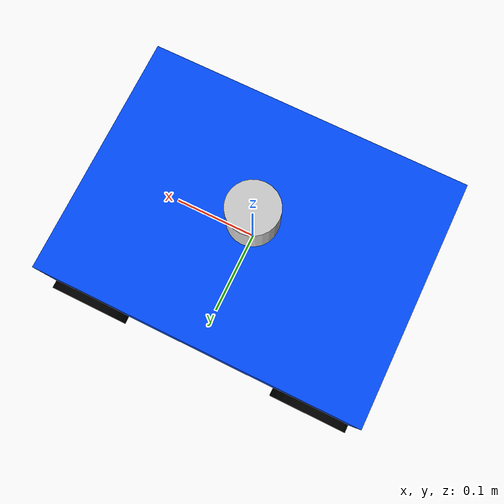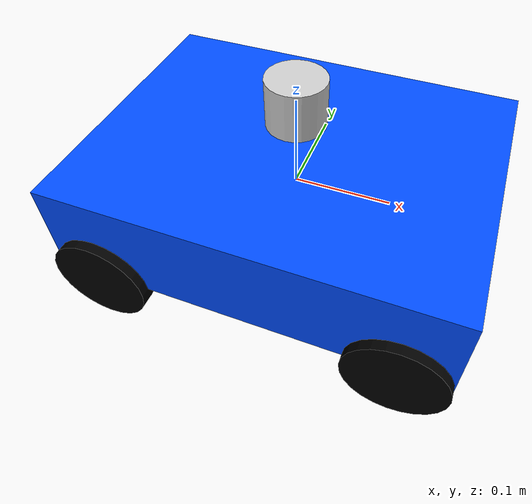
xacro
<?xml version="1.0"?>
<robot name="eclipse_bot" xmlns:xacro="http://www.ros.org/wiki/xacro">

  <!-- ===== BASE ===== -->
  <link name="base_link">
    <visual>
      <geometry><box size="0.4 0.3 0.1"/></geometry>
      <material name="blue"><color rgba="0.0 0.3 1.0 1.0"/></material>
    </visual>
    <collision>
      <geometry><box size="0.4 0.3 0.1"/></geometry>
    </collision>
    <inertial>
      <mass value="2.0"/>
      <inertia ixx="0.02" iyy="0.02" izz="0.02" ixy="0" ixz="0" iyz="0"/>
    </inertial>
  </link>

  <!-- ===== WHEELS ===== -->
  <xacro:macro name="wheel" params="name x y">
    <link name="${name}">
      <visual>
        <geometry><cylinder length="0.02" radius="0.05"/></geometry>
        <material name="black"><color rgba="0 0 0 1"/></material>
        <origin rpy="1.5708 0 0" xyz="0 0 0"/>
      </visual>
      <collision>
        <geometry><cylinder length="0.02" radius="0.05"/></geometry>
        <origin rpy="1.5708 0 0" xyz="0 0 0"/>
      </collision>
      <inertial>
        <mass value="0.2"/>
        <!-- Correct, nonzero inertia for a cylinder about its axis -->
        <inertia ixx="0.00025" iyy="0.00025" izz="0.0001" ixy="0" ixz="0" iyz="0"/>
      </inertial>
    </link>

    <joint name="${name}_joint" type="continuous">
      <parent link="base_link"/>
      <child link="${name}"/>
      <origin xyz="${x} ${y} -0.05" rpy="0 0 0"/>
      <axis xyz="0 1 0"/>
    </joint>

    <!-- Gazebo friction for wheel -->
    <gazebo reference="${name}">
      <mu1>1.0</mu1>
      <mu2>1.0</mu2>
      <kp>1000000.0</kp>
      <kd>100.0</kd>
      <minDepth>0.001</minDepth>
      <maxVel>1.0</maxVel>
    </gazebo>
  </xacro:macro>

  <xacro:wheel name="front_left_wheel"  x="0.15"  y="0.15"/>
  <xacro:wheel name="front_right_wheel" x="0.15"  y="-0.15"/>
  <xacro:wheel name="rear_left_wheel"   x="-0.15" y="0.15"/>
  <xacro:wheel name="rear_right_wheel"  x="-0.15" y="-0.15"/>

  <!-- Reduce friction on rear wheels so they spin freely -->
  <gazebo reference="rear_left_wheel">
    <mu1>0.1</mu1>
    <mu2>0.1</mu2>
  </gazebo>
  <gazebo reference="rear_right_wheel">
    <mu1>0.1</mu1>
    <mu2>0.1</mu2>
  </gazebo>

  <!-- ===== LIDAR LINK ===== -->
  <link name="lidar_link">
    <visual>
      <geometry><cylinder length="0.05" radius="0.03"/></geometry>
      <material name="gray"><color rgba="0.8 0.8 0.8 1.0"/></material>
    </visual>
    <collision>
      <geometry><cylinder length="0.05" radius="0.03"/></geometry>
    </collision>
    <inertial>
      <mass value="0.05"/>
      <inertia ixx="0.0001" iyy="0.0001" izz="0.0001" ixy="0" ixz="0" iyz="0"/>
    </inertial>
  </link>

  <joint name="lidar_joint" type="fixed">
    <parent link="base_link"/>
    <child link="lidar_link"/>
    <origin xyz="0 0 0.1" rpy="0 0 0"/>
  </joint>

  <!-- ===== IMU LINK ===== -->
  <link name="imu_link">
    <inertial>
      <mass value="0.01"/>
      <inertia ixx="0.00001" iyy="0.00001" izz="0.00001" ixy="0" ixz="0" iyz="0"/>
    </inertial>
  </link>

  <joint name="imu_joint" type="fixed">
    <parent link="base_link"/>
    <child link="imu_link"/>
    <origin xyz="0 0 0.05" rpy="0 0 0"/>
  </joint>

  <!-- ===== DIFF DRIVE PLUGIN (using front wheels only, rear are passive) ===== -->
  <gazebo>
    <plugin name="gz::sim::systems::DiffDrive" filename="gz-sim-diff-drive-system">
      <left_joint>front_left_wheel_joint</left_joint>
      <right_joint>front_right_wheel_joint</right_joint>
      <wheel_separation>0.3</wheel_separation>
      <wheel_radius>0.05</wheel_radius>
      <odom_publish_frequency>50</odom_publish_frequency>
      <max_linear_acceleration>1</max_linear_acceleration>
      <min_linear_acceleration>-1</min_linear_acceleration>
      <max_angular_acceleration>2</max_angular_acceleration>
      <min_angular_acceleration>-2</min_angular_acceleration>
      <topic>cmd_vel</topic>
      <odom_topic>odom</odom_topic>
      <odom_frame>odom</odom_frame>
      <robot_base_frame>base_link</robot_base_frame>
      <publish_odom>true</publish_odom>
      <publish_tf>true</publish_tf>
    </plugin>
  </gazebo>

  <!-- ===== LIDAR SENSOR ===== -->
  <gazebo reference="lidar_link">
    <sensor name="lidar_sensor" type="gpu_lidar">
      <always_on>true</always_on>
      <update_rate>10</update_rate>
      <visualize>true</visualize>
      <pose>0 0 0 0 0 0</pose>
      <topic>scan</topic>
      <ray>
        <scan>
          <horizontal>
            <samples>720</samples>
            <resolution>1</resolution>
            <min_angle>-1.5708</min_angle>
            <max_angle>1.5708</max_angle>
          </horizontal>
        </scan>
        <range>
          <min>0.12</min>
          <max>5.0</max>
          <resolution>0.01</resolution>
        </range>
        <noise>
          <type>gaussian</type>
          <stddev>0.01</stddev>
        </noise>
      </ray>
      <plugin name="gz::sim::systems::Sensors" filename="gz-sim-sensors-system"/>
    </sensor>
  </gazebo>

  <!-- ===== IMU SENSOR ===== -->
  <gazebo reference="imu_link">
    <sensor name="imu_sensor" type="imu">
      <always_on>true</always_on>
      <update_rate>100</update_rate>
      <topic>imu</topic>
      <imu>
        <angular_velocity>
          <x>
            <noise type="gaussian">
              <mean>0.0</mean>
              <stddev>0.01</stddev>
            </noise>
          </x>
          <y>
            <noise type="gaussian">
              <mean>0.0</mean>
              <stddev>0.01</stddev>
            </noise>
          </y>
          <z>
            <noise type="gaussian">
              <mean>0.0</mean>
              <stddev>0.01</stddev>
            </noise>
          </z>
        </angular_velocity>
        <linear_acceleration>
          <x>
            <noise type="gaussian">
              <mean>0.0</mean>
              <stddev>0.1</stddev>
            </noise>
          </x>
          <y>
            <noise type="gaussian">
              <mean>0.0</mean>
              <stddev>0.1</stddev>
            </noise>
          </y>
          <z>
            <noise type="gaussian">
              <mean>0.0</mean>
              <stddev>0.1</stddev>
            </noise>
          </z>
        </linear_acceleration>
      </imu>
    </sensor>
  </gazebo>

</robot>
